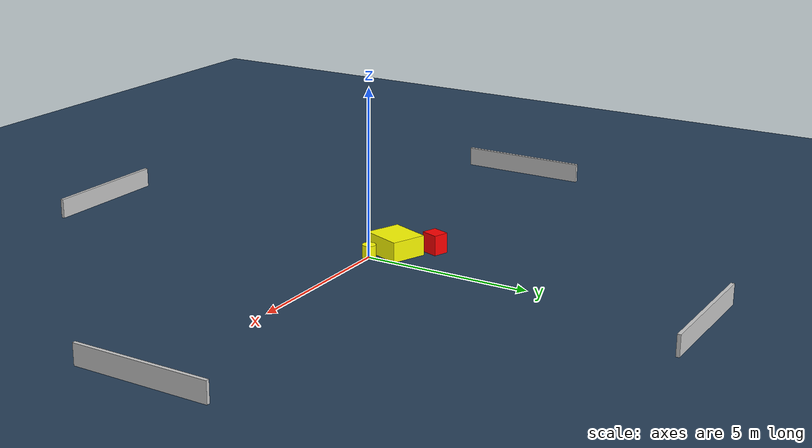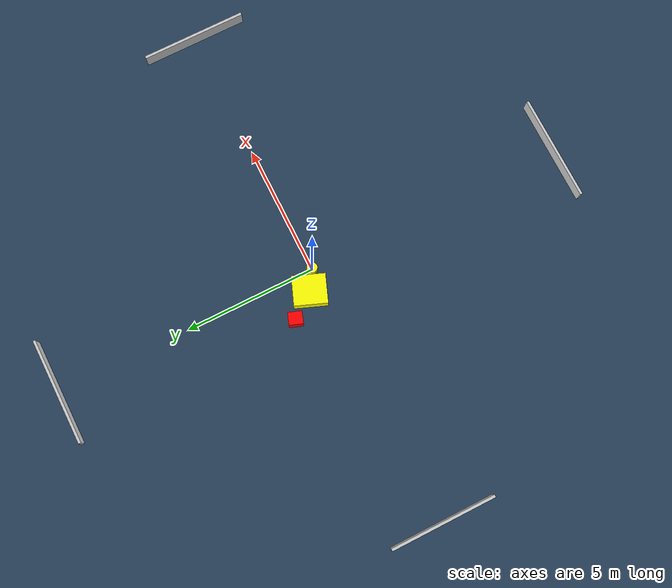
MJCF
<?xml version="1.0" ?>
<mujoco model="generated_environment">
  <option timestep="0.01" integrator="RK4" cone="elliptic"/>
  <default>
    <geom density="1"/>
  </default>
  <asset>
    <texture builtin="gradient" height="3072" name="skybox" rgb1="0.3 0.5 0.7" rgb2="0 0 0" type="skybox" width="512"/>
    <texture builtin="checker" height="300" name="groundplane" rgb1="0.2 0.3 0.4" rgb2="0.1 0.2 0.3" type="2d" width="300"/>
    <material name="groundplane" reflectance="0.2" texrepeat="5 5" texture="groundplane"/>
  </asset>
  <worldbody>
    <light dir="0 0 -1" directional="true" pos="0 0 1.5"/>
    <geom condim="3" friction="0.5 0.005 0.001" material="groundplane" name="floor" pos="0 0 0" size="0 0 0.05" type="plane"/>
    <body name="walls">
      <geom name="wall_1" condim="4" pos="-10.0 0.0 0.3" rgba="0.800000011920929 0.800000011920929 0.800000011920929 1.0" size="0.05 2.0 0.3" type="box"/>
      <geom name="wall_2" condim="4" pos="10.0 0.0 0.3" rgba="0.800000011920929 0.800000011920929 0.800000011920929 1.0" size="0.05 2.0 0.3" type="box"/>
      <geom name="wall_3" condim="4" pos="0.0 -10.0 0.3" rgba="0.800000011920929 0.800000011920929 0.800000011920929 1.0" size="2.0 0.05 0.3" type="box"/>
      <geom name="wall_4" condim="4" pos="0.0 10.0 0.3" rgba="0.800000011920929 0.800000011920929 0.800000011920929 1.0" size="2.0 0.05 0.3" type="box"/>
    </body>
    <body name="robot">
      <joint name="joint_x" type="slide" pos="0 0 0" axis="1 0 0"/>
      <joint name="joint_y" type="slide" pos="0 0 0" axis="0 1 0"/>
      <geom name="robot" type="cylinder" pos="0.0 0.0 0.2" size="0.2 0.2 0.0" mass="5.0" friction="1.0 0.005 0.0001" condim="4" rgba="1.0 1.0 0.0 1.0"/>
    </body>
    <body name="obstacle_1_movable">
      <geom name="obstacle_1_movable" condim="4" pos="-0.7185862153251243 0.45866879985045894 0.3" euler="0 0 338.821547187637" friction="0.0 0.005 0.001" rgba="1.0 1.0 0.0 1.0" size="0.5476637644784799 0.6199231474036515 0.3" type="box" mass="0.1"/>
      <joint type="free"/>
    </body>
    <body name="obstacle_2_static">
      <geom name="obstacle_2_static" condim="4" pos="-1.4161892168732089 1.371560282271023 0.3" euler="0 0 70.84056472374823" friction="0.0 0.005 0.001" rgba="1.0 0.0 0.0 1.0" size="0.2640030186786809 0.2346284450961655 0.3" type="box"/>
    </body>
  </worldbody>
  <actuator>
    <motor name="actuator_x" joint="joint_x" gear="1" ctrlrange="-1 1"/>
    <motor name="actuator_y" joint="joint_y" gear="1" ctrlrange="-1 1"/>
  </actuator>
</mujoco>
